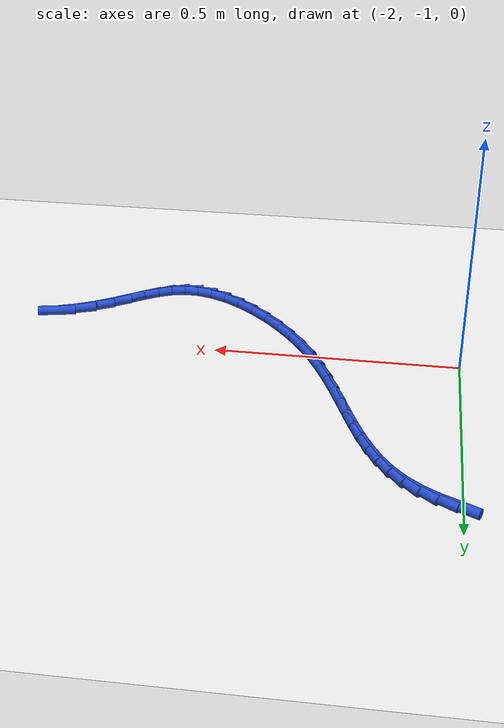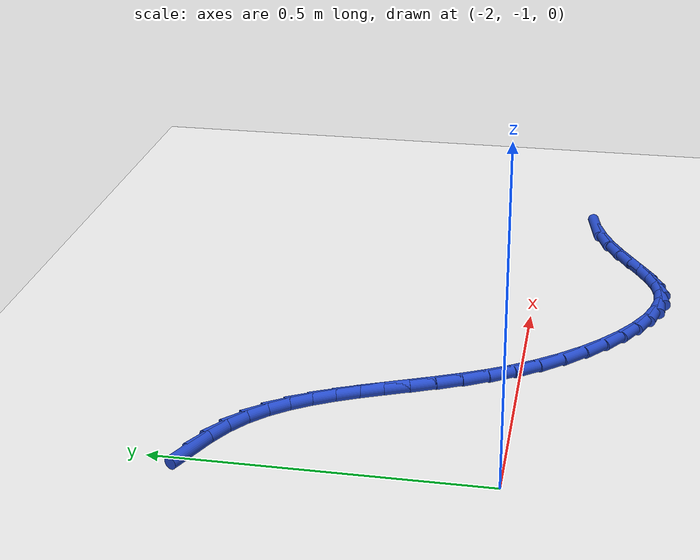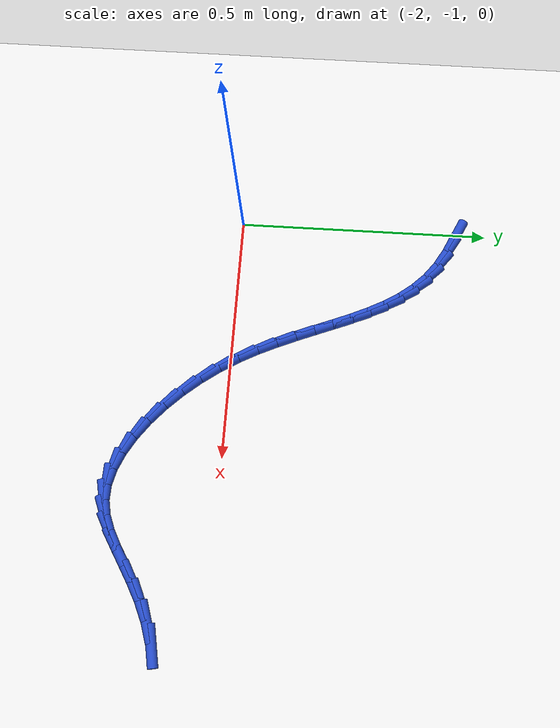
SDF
<sdf version="1.6">
 <world name="default">
  <model name="ground_plane">
   <static>1</static>
   <link name="link">
    <collision name="collision">
     <geometry><plane><normal>0 0 1</normal><size>100 100</size></plane></geometry>
     <surface><friction><ode><mu>100</mu><mu2>50</mu2></ode></friction></surface>
    </collision>
    <visual name="visual">
     <cast_shadows>0</cast_shadows>
     <geometry><plane><normal>0 0 1</normal><size>100 100</size></plane></geometry>
     <material>
      <script><uri>file://media/materials/scripts/gazebo.material</uri><name>Gazebo/WhiteGlow</name></script>
     </material>
    </visual>
   </link>
  </model>
  <model name="line">
   <link name="link_118">
    <pose>-1.9919663358946684 -0.5622078105404273 0.01 0 1.57 -0.4286873722533168</pose>
    <collision name="collision">
     <geometry><cylinder><radius>0.01</radius><length>0.08</length></cylinder></geometry>
    </collision>
    <visual name="visual">
     <material>
      <script><name>Gazebo/Blue</name><uri>file://media/materials/scripts/gazebo.material</uri></script>
     </material>
     <geometry><cylinder><radius>0.01</radius><length>0.08</length></cylinder></geometry>
    </visual>
   </link>
   <link name="link_119">
    <pose>-1.9571086999814216 -0.5781389095667823 0.01 0 1.57 -0.5163328179439719</pose>
    <collision name="collision">
     <geometry><cylinder><radius>0.01</radius><length>0.08</length></cylinder></geometry>
    </collision>
    <visual name="visual">
     <material>
      <script><name>Gazebo/Blue</name><uri>file://media/materials/scripts/gazebo.material</uri></script>
     </material>
     <geometry><cylinder><radius>0.01</radius><length>0.08</length></cylinder></geometry>
    </visual>
   </link>
   <link name="link_120">
    <pose>-1.925020972715636 -0.5963551966541348 0.01 0 1.57 -0.6502694522451806</pose>
    <collision name="collision">
     <geometry><cylinder><radius>0.01</radius><length>0.08</length></cylinder></geometry>
    </collision>
    <visual name="visual">
     <material>
      <script><name>Gazebo/Blue</name><uri>file://media/materials/scripts/gazebo.material</uri></script>
     </material>
     <geometry><cylinder><radius>0.01</radius><length>0.08</length></cylinder></geometry>
    </visual>
   </link>
   <link name="link_121">
    <pose>-1.8968305039384077 -0.6177977032745614 0.01 0 1.57 -0.7895568518379487</pose>
    <collision name="collision">
     <geometry><cylinder><radius>0.01</radius><length>0.08</length></cylinder></geometry>
    </collision>
    <visual name="visual">
     <material>
      <script><name>Gazebo/Blue</name><uri>file://media/materials/scripts/gazebo.material</uri></script>
     </material>
     <geometry><cylinder><radius>0.01</radius><length>0.08</length></cylinder></geometry>
    </visual>
   </link>
   <link name="link_122">
    <pose>-1.8723867889819326 -0.6424455760263145 0.01 0 1.57 -0.9118202989618835</pose>
    <collision name="collision">
     <geometry><cylinder><radius>0.01</radius><length>0.08</length></cylinder></geometry>
    </collision>
    <visual name="visual">
     <material>
      <script><name>Gazebo/Blue</name><uri>file://media/materials/scripts/gazebo.material</uri></script>
     </material>
     <geometry><cylinder><radius>0.01</radius><length>0.08</length></cylinder></geometry>
    </visual>
   </link>
   <link name="link_123">
    <pose>-1.8510922161369423 -0.6699414087176623 0.01 0 1.57 -1.0121431230985518</pose>
    <collision name="collision">
     <geometry><cylinder><radius>0.01</radius><length>0.08</length></cylinder></geometry>
    </collision>
    <visual name="visual">
     <material>
      <script><name>Gazebo/Blue</name><uri>file://media/materials/scripts/gazebo.material</uri></script>
     </material>
     <geometry><cylinder><radius>0.01</radius><length>0.08</length></cylinder></geometry>
    </visual>
   </link>
   <link name="link_124">
    <pose>-1.8323487001921608 -0.699927438735687 0.01 0 1.57 -1.0890997168224827</pose>
    <collision name="collision">
     <geometry><cylinder><radius>0.01</radius><length>0.08</length></cylinder></geometry>
    </collision>
    <visual name="visual">
     <material>
      <script><name>Gazebo/Blue</name><uri>file://media/materials/scripts/gazebo.material</uri></script>
     </material>
     <geometry><cylinder><radius>0.01</radius><length>0.08</length></cylinder></geometry>
    </visual>
   </link>
   <link name="link_125">
    <pose>-1.8155581559363108 -0.7320459034674702 0.01 0 1.57 -1.1434431685298367</pose>
    <collision name="collision">
     <geometry><cylinder><radius>0.01</radius><length>0.08</length></cylinder></geometry>
    </collision>
    <visual name="visual">
     <material>
      <script><name>Gazebo/Blue</name><uri>file://media/materials/scripts/gazebo.material</uri></script>
     </material>
     <geometry><cylinder><radius>0.01</radius><length>0.08</length></cylinder></geometry>
    </visual>
   </link>
   <link name="link_126">
    <pose>-1.800122498158114 -0.7659390403000935 0.01 0 1.57 -1.1768178027788292</pose>
    <collision name="collision">
     <geometry><cylinder><radius>0.01</radius><length>0.08</length></cylinder></geometry>
    </collision>
    <visual name="visual">
     <material>
      <script><name>Gazebo/Blue</name><uri>file://media/materials/scripts/gazebo.material</uri></script>
     </material>
     <geometry><cylinder><radius>0.01</radius><length>0.08</length></cylinder></geometry>
    </visual>
   </link>
   <link name="link_127">
    <pose>-1.7854436416462953 -0.8012490866206387 0.01 0 1.57 -1.1909428328836316</pose>
    <collision name="collision">
     <geometry><cylinder><radius>0.01</radius><length>0.08</length></cylinder></geometry>
    </collision>
    <visual name="visual">
     <material>
      <script><name>Gazebo/Blue</name><uri>file://media/materials/scripts/gazebo.material</uri></script>
     </material>
     <geometry><cylinder><radius>0.01</radius><length>0.08</length></cylinder></geometry>
    </visual>
   </link>
   <link name="link_128">
    <pose>-1.770923501189576 -0.8376182798161873 0.01 0 1.57 -1.187240823925047</pose>
    <collision name="collision">
     <geometry><cylinder><radius>0.01</radius><length>0.08</length></cylinder></geometry>
    </collision>
    <visual name="visual">
     <material>
      <script><name>Gazebo/Blue</name><uri>file://media/materials/scripts/gazebo.material</uri></script>
     </material>
     <geometry><cylinder><radius>0.01</radius><length>0.08</length></cylinder></geometry>
    </visual>
   </link>
   <link name="link_129">
    <pose>-1.7559639915766796 -0.8746888572738211 0.01 0 1.57 -1.1667559689229416</pose>
    <collision name="collision">
     <geometry><cylinder><radius>0.01</radius><length>0.08</length></cylinder></geometry>
    </collision>
    <visual name="visual">
     <material>
      <script><name>Gazebo/Blue</name><uri>file://media/materials/scripts/gazebo.material</uri></script>
     </material>
     <geometry><cylinder><radius>0.01</radius><length>0.08</length></cylinder></geometry>
    </visual>
   </link>
   <link name="link_130">
    <pose>-1.7399670275963286 -0.9121030563806218 0.01 0 1.57 -1.1302430695405767</pose>
    <collision name="collision">
     <geometry><cylinder><radius>0.01</radius><length>0.08</length></cylinder></geometry>
    </collision>
    <visual name="visual">
     <material>
      <script><name>Gazebo/Blue</name><uri>file://media/materials/scripts/gazebo.material</uri></script>
     </material>
     <geometry><cylinder><radius>0.01</radius><length>0.08</length></cylinder></geometry>
    </visual>
   </link>
   <link name="link_131">
    <pose>-1.722334524037247 -0.9495031145236712 0.01 0 1.57 -1.0783658686361717</pose>
    <collision name="collision">
     <geometry><cylinder><radius>0.01</radius><length>0.08</length></cylinder></geometry>
    </collision>
    <visual name="visual">
     <material>
      <script><name>Gazebo/Blue</name><uri>file://media/materials/scripts/gazebo.material</uri></script>
     </material>
     <geometry><cylinder><radius>0.01</radius><length>0.08</length></cylinder></geometry>
    </visual>
   </link>
   <link name="link_132">
    <pose>-1.702468395688156 -0.9865312690900508 0.01 0 1.57 -1.0120470394549346</pose>
    <collision name="collision">
     <geometry><cylinder><radius>0.01</radius><length>0.08</length></cylinder></geometry>
    </collision>
    <visual name="visual">
     <material>
      <script><name>Gazebo/Blue</name><uri>file://media/materials/scripts/gazebo.material</uri></script>
     </material>
     <geometry><cylinder><radius>0.01</radius><length>0.08</length></cylinder></geometry>
    </visual>
   </link>
   <link name="link_133">
    <pose>-1.6797750886344645 -1.0228284473188507 0.01 0 1.57 -0.938280716214174</pose>
    <collision name="collision">
     <geometry><cylinder><radius>0.01</radius><length>0.08</length></cylinder></geometry>
    </collision>
    <visual name="visual">
     <material>
      <script><name>Gazebo/Blue</name><uri>file://media/materials/scripts/gazebo.material</uri></script>
     </material>
     <geometry><cylinder><radius>0.01</radius><length>0.08</length></cylinder></geometry>
    </visual>
   </link>
   <link name="link_134">
    <pose>-1.6540520066585296 -1.0579225376266788 0.01 0 1.57 -0.8657523170491589</pose>
    <collision name="collision">
     <geometry><cylinder><radius>0.01</radius><length>0.08</length></cylinder></geometry>
    </collision>
    <visual name="visual">
     <material>
      <script><name>Gazebo/Blue</name><uri>file://media/materials/scripts/gazebo.material</uri></script>
     </material>
     <geometry><cylinder><radius>0.01</radius><length>0.08</length></cylinder></geometry>
    </visual>
   </link>
   <link name="link_135">
    <pose>-1.6257832240591634 -1.0911428892346806 0.01 0 1.57 -0.7918830858765781</pose>
    <collision name="collision">
     <geometry><cylinder><radius>0.01</radius><length>0.08</length></cylinder></geometry>
    </collision>
    <visual name="visual">
     <material>
      <script><name>Gazebo/Blue</name><uri>file://media/materials/scripts/gazebo.material</uri></script>
     </material>
     <geometry><cylinder><radius>0.01</radius><length>0.08</length></cylinder></geometry>
    </visual>
   </link>
   <link name="link_136">
    <pose>-1.5955224370118264 -1.1217987213729133 0.01 0 1.57 -0.7127918303695694</pose>
    <collision name="collision">
     <geometry><cylinder><radius>0.01</radius><length>0.08</length></cylinder></geometry>
    </collision>
    <visual name="visual">
     <material>
      <script><name>Gazebo/Blue</name><uri>file://media/materials/scripts/gazebo.material</uri></script>
     </material>
     <geometry><cylinder><radius>0.01</radius><length>0.08</length></cylinder></geometry>
    </visual>
   </link>
   <link name="link_137">
    <pose>-1.56382334169198 -1.1491992532714332 0.01 0 1.57 -0.6239054393927589</pose>
    <collision name="collision">
     <geometry><cylinder><radius>0.01</radius><length>0.08</length></cylinder></geometry>
    </collision>
    <visual name="visual">
     <material>
      <script><name>Gazebo/Blue</name><uri>file://media/materials/scripts/gazebo.material</uri></script>
     </material>
     <geometry><cylinder><radius>0.01</radius><length>0.08</length></cylinder></geometry>
    </visual>
   </link>
   <link name="link_138">
    <pose>-1.5312396342750874 -1.1726537041602985 0.01 0 1.57 -0.5193575508772442</pose>
    <collision name="collision">
     <geometry><cylinder><radius>0.01</radius><length>0.08</length></cylinder></geometry>
    </collision>
    <visual name="visual">
     <material>
      <script><name>Gazebo/Blue</name><uri>file://media/materials/scripts/gazebo.material</uri></script>
     </material>
     <geometry><cylinder><radius>0.01</radius><length>0.08</length></cylinder></geometry>
    </visual>
   </link>
   <link name="link_139">
    <pose>-1.4983250109366069 -1.1914712932695648 0.01 0 1.57 -0.39135480837548686</pose>
    <collision name="collision">
     <geometry><cylinder><radius>0.01</radius><length>0.08</length></cylinder></geometry>
    </collision>
    <visual name="visual">
     <material>
      <script><name>Gazebo/Blue</name><uri>file://media/materials/scripts/gazebo.material</uri></script>
     </material>
     <geometry><cylinder><radius>0.01</radius><length>0.08</length></cylinder></geometry>
    </visual>
   </link>
   <link name="link_140">
    <pose>-1.4656331678520027 -1.2049612398292902 0.01 0 1.57 -0.22996292804181728</pose>
    <collision name="collision">
     <geometry><cylinder><radius>0.01</radius><length>0.08</length></cylinder></geometry>
    </collision>
    <visual name="visual">
     <material>
      <script><name>Gazebo/Blue</name><uri>file://media/materials/scripts/gazebo.material</uri></script>
     </material>
     <geometry><cylinder><radius>0.01</radius><length>0.08</length></cylinder></geometry>
    </visual>
   </link>
   <link name="link_141">
    <pose>-1.4337178011967353 -1.2124327630695313 0.01 0 1.57 -0.025077862682477275</pose>
    <collision name="collision">
     <geometry><cylinder><radius>0.01</radius><length>0.08</length></cylinder></geometry>
    </collision>
    <visual name="visual">
     <material>
      <script><name>Gazebo/Blue</name><uri>file://media/materials/scripts/gazebo.material</uri></script>
     </material>
     <geometry><cylinder><radius>0.01</radius><length>0.08</length></cylinder></geometry>
    </visual>
   </link>
   <link name="link_142">
    <pose>-1.4031293932372517 -1.2132000158123033 0.01 0 1.57 0.2018188105657566</pose>
    <collision name="collision">
     <geometry><cylinder><radius>0.01</radius><length>0.08</length></cylinder></geometry>
    </collision>
    <visual name="visual">
     <material>
      <script><name>Gazebo/Blue</name><uri>file://media/materials/scripts/gazebo.material</uri></script>
     </material>
     <geometry><cylinder><radius>0.01</radius><length>0.08</length></cylinder></geometry>
    </visual>
   </link>
   <link name="link_143">
    <pose>-1.3739881871621342 -1.2072376002097818 0.01 0 1.57 0.3812979106945793</pose>
    <collision name="collision">
     <geometry><cylinder><radius>0.01</radius><length>0.08</length></cylinder></geometry>
    </collision>
    <visual name="visual">
     <material>
      <script><name>Gazebo/Blue</name><uri>file://media/materials/scripts/gazebo.material</uri></script>
     </material>
     <geometry><cylinder><radius>0.01</radius><length>0.08</length></cylinder></geometry>
    </visual>
   </link>
   <link name="link_144">
    <pose>-1.3455556156346873 -1.195838457136336 0.01 0 1.57 0.494090128824326</pose>
    <collision name="collision">
     <geometry><cylinder><radius>0.01</radius><length>0.08</length></cylinder></geometry>
    </collision>
    <visual name="visual">
     <material>
      <script><name>Gazebo/Blue</name><uri>file://media/materials/scripts/gazebo.material</uri></script>
     </material>
     <geometry><cylinder><radius>0.01</radius><length>0.08</length></cylinder></geometry>
    </visual>
   </link>
   <link name="link_145">
    <pose>-1.3169911193530426 -1.180452092800691 0.01 0 1.57 0.5454302310140926</pose>
    <collision name="collision">
     <geometry><cylinder><radius>0.01</radius><length>0.08</length></cylinder></geometry>
    </collision>
    <visual name="visual">
     <material>
      <script><name>Gazebo/Blue</name><uri>file://media/materials/scripts/gazebo.material</uri></script>
     </material>
     <geometry><cylinder><radius>0.01</radius><length>0.08</length></cylinder></geometry>
    </visual>
   </link>
   <link name="link_146">
    <pose>-1.2874541390153342 -1.1625280134115723 0.01 0 1.57 0.5451502024054556</pose>
    <collision name="collision">
     <geometry><cylinder><radius>0.01</radius><length>0.08</length></cylinder></geometry>
    </collision>
    <visual name="visual">
     <material>
      <script><name>Gazebo/Blue</name><uri>file://media/materials/scripts/gazebo.material</uri></script>
     </material>
     <geometry><cylinder><radius>0.01</radius><length>0.08</length></cylinder></geometry>
    </visual>
   </link>
   <link name="link_147">
    <pose>-1.2561041153196932 -1.1435157251777048 0.01 0 1.57 0.5016908910653459</pose>
    <collision name="collision">
     <geometry><cylinder><radius>0.01</radius><length>0.08</length></cylinder></geometry>
    </collision>
    <visual name="visual">
     <material>
      <script><name>Gazebo/Blue</name><uri>file://media/materials/scripts/gazebo.material</uri></script>
     </material>
     <geometry><cylinder><radius>0.01</radius><length>0.08</length></cylinder></geometry>
    </visual>
   </link>
   <link name="link_148">
    <pose>-1.2221004889642526 -1.1248647343078135 0.01 0 1.57 0.4221036924222497</pose>
    <collision name="collision">
     <geometry><cylinder><radius>0.01</radius><length>0.08</length></cylinder></geometry>
    </collision>
    <visual name="visual">
     <material>
      <script><name>Gazebo/Blue</name><uri>file://media/materials/scripts/gazebo.material</uri></script>
     </material>
     <geometry><cylinder><radius>0.01</radius><length>0.08</length></cylinder></geometry>
    </visual>
   </link>
   <link name="link_149">
    <pose>-1.184602700647146 -1.1080245470106243 0.01 0 1.57 0.31389266741894656</pose>
    <collision name="collision">
     <geometry><cylinder><radius>0.01</radius><length>0.08</length></cylinder></geometry>
    </collision>
    <visual name="visual">
     <material>
      <script><name>Gazebo/Blue</name><uri>file://media/materials/scripts/gazebo.material</uri></script>
     </material>
     <geometry><cylinder><radius>0.01</radius><length>0.08</length></cylinder></geometry>
    </visual>
   </link>
   <link name="link_150">
    <pose>-1.1427701910665042 -1.0944446694948613 0.01 0 1.57 0.18650060625696602</pose>
    <collision name="collision">
     <geometry><cylinder><radius>0.01</radius><length>0.08</length></cylinder></geometry>
    </collision>
    <visual name="visual">
     <material>
      <script><name>Gazebo/Blue</name><uri>file://media/materials/scripts/gazebo.material</uri></script>
     </material>
     <geometry><cylinder><radius>0.01</radius><length>0.08</length></cylinder></geometry>
    </visual>
   </link>
  </model>
 </world>
</sdf>
